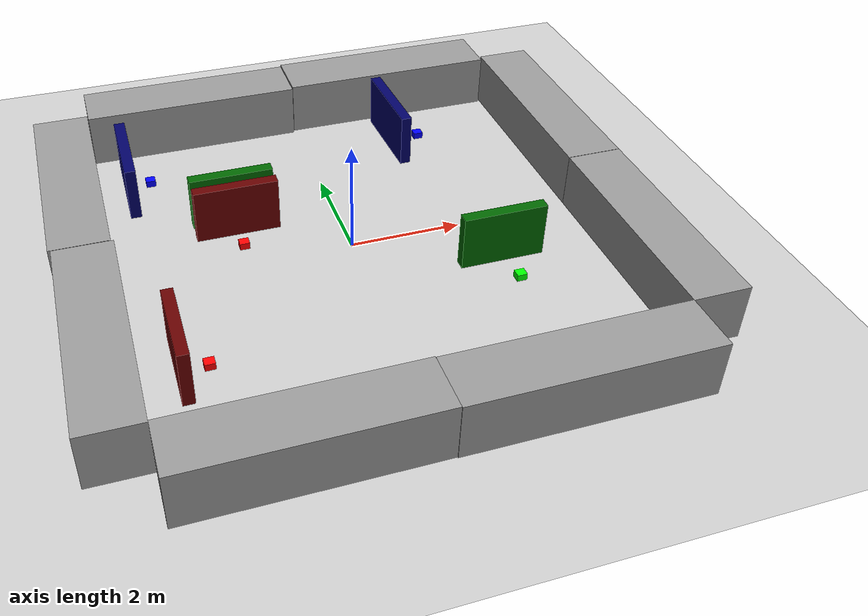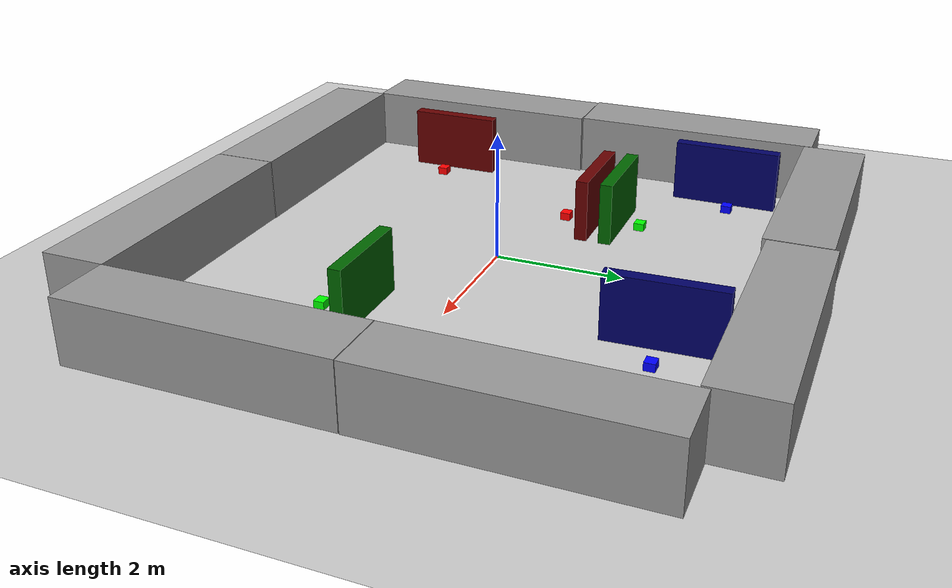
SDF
<sdf version="1.7">
 <world name="default">
  <light name="sun" type="directional">
   <cast_shadows>0</cast_shadows>
   <pose>0 0 10 0 -0 0</pose>
   <diffuse>0.8 0.8 0.8 1</diffuse>
   <specular>0.2 0.2 0.2 1</specular>
   <attenuation>
    <range>1000</range>
    <constant>0.9</constant>
    <linear>0.01</linear>
    <quadratic>0.001</quadratic>
   </attenuation>
   <direction>-0.5 0.1 -0.9</direction>
   <spot><inner_angle>0</inner_angle><outer_angle>0</outer_angle><falloff>0</falloff></spot>
  </light>
  <model name="ground_plane">
   <static>1</static>
   <link name="link">
    <collision name="collision">
     <geometry><plane><normal>0 0 1</normal><size>100 100</size></plane></geometry>
     <surface><friction><ode><mu>100</mu><mu2>50</mu2></ode></friction></surface>
    </collision>
    <visual name="visual">
     <cast_shadows>0</cast_shadows>
     <geometry><plane><normal>0 0 1</normal><size>100 100</size></plane></geometry>
     <material>
      <script><uri>file://media/materials/scripts/gazebo.material</uri><name>Gazebo/Grey</name></script>
     </material>
    </visual>
   </link>
  </model>
  <gravity>0 0 -9.8</gravity>
  <scene><ambient>0.4 0.4 0.4 1</ambient><background>0.7 0.7 0.7 1</background><shadows>1</shadows></scene>
  <magnetic_field>6e-06 2.3e-05 -4.2e-05</magnetic_field>
  <atmosphere type="adiabatic"/>
  <physics type="ode">
   <max_step_size>0.001</max_step_size>
   <real_time_factor>1</real_time_factor>
   <real_time_update_rate>1000</real_time_update_rate>
  </physics>
  <audio><device>default</device></audio>
  <spherical_coordinates>
   <surface_model>EARTH_WGS84</surface_model>
   <latitude_deg>0</latitude_deg>
   <longitude_deg>0</longitude_deg>
   <elevation>0</elevation>
   <heading_deg>0</heading_deg>
  </spherical_coordinates>
  <model name="unit_box_0">
   <pose>2.04077 4.53885 0.499174 0 0.000405 1.9e-05</pose>
   <link name="link">
    <inertial>
     <mass>1</mass>
     <inertia>
      <ixx>0.166667</ixx>
      <ixy>0</ixy>
      <ixz>0</ixz>
      <iyy>0.166667</iyy>
      <iyz>0</iyz>
      <izz>0.166667</izz>
     </inertia>
    </inertial>
    <collision name="collision"><geometry><box><size>4.08527 1 1</size></box></geometry></collision>
    <visual name="visual">
     <geometry><box><size>4.08527 1 1</size></box></geometry>
     <material>
      <script><name>Gazebo/Grey</name><uri>file://media/materials/scripts/gazebo.material</uri></script>
     </material>
    </visual>
   </link>
  </model>
  <model name="unit_box_0_clone">
   <pose>-2.02889 4.47648 0.499239 0 0.000379 0</pose>
   <link name="link">
    <inertial>
     <mass>1</mass>
     <inertia>
      <ixx>0.166667</ixx>
      <ixy>0</ixy>
      <ixz>0</ixz>
      <iyy>0.166667</iyy>
      <iyz>0</iyz>
      <izz>0.166667</izz>
     </inertia>
    </inertial>
    <collision name="collision"><geometry><box><size>4.01582 1 1</size></box></geometry></collision>
    <visual name="visual">
     <geometry><box><size>4.01582 1 1</size></box></geometry>
     <material>
      <script><name>Gazebo/Grey</name><uri>file://media/materials/scripts/gazebo.material</uri></script>
     </material>
    </visual>
   </link>
  </model>
  <model name="unit_box_0_clone_clone">
   <pose>2.05955 -4.50778 0.499133 0 -0.00042 3e-06</pose>
   <link name="link">
    <inertial>
     <mass>1</mass>
     <inertia>
      <ixx>0.166667</ixx>
      <ixy>0</ixy>
      <ixz>0</ixz>
      <iyy>0.166667</iyy>
      <iyz>0</iyz>
      <izz>0.166667</izz>
     </inertia>
    </inertial>
    <collision name="collision"><geometry><box><size>4.12662 1 1</size></box></geometry></collision>
    <visual name="visual">
     <geometry><box><size>4.12662 1 1</size></box></geometry>
     <material>
      <script><name>Gazebo/Grey</name><uri>file://media/materials/scripts/gazebo.material</uri></script>
     </material>
    </visual>
   </link>
  </model>
  <model name="unit_box_clone_0">
   <pose>-4.5144 -1.99618 0.5 -0 -1e-06 -0.00473</pose>
   <link name="link">
    <inertial>
     <mass>1</mass>
     <inertia>
      <ixx>0.166667</ixx>
      <ixy>0</ixy>
      <ixz>0</ixz>
      <iyy>0.166667</iyy>
      <iyz>0</iyz>
      <izz>0.166667</izz>
     </inertia>
    </inertial>
    <collision name="collision"><geometry><box><size>1 4.0622 1</size></box></geometry></collision>
    <visual name="visual">
     <geometry><box><size>1 4.0622 1</size></box></geometry>
     <material>
      <script><name>Gazebo/Grey</name><uri>file://media/materials/scripts/gazebo.material</uri></script>
     </material>
    </visual>
   </link>
  </model>
  <model name="unit_box_clone_1">
   <pose>-4.55273 2.07525 0.499196 -0.000396 -0 -2.2e-05</pose>
   <link name="link">
    <inertial>
     <mass>1</mass>
     <inertia>
      <ixx>0.166667</ixx>
      <ixy>0</ixy>
      <ixz>0</ixz>
      <iyy>0.166667</iyy>
      <iyz>0</iyz>
      <izz>0.166667</izz>
     </inertia>
    </inertial>
    <collision name="collision"><geometry><box><size>1 4.0622 1</size></box></geometry></collision>
    <visual name="visual">
     <geometry><box><size>1 4.0622 1</size></box></geometry>
     <material>
      <script><name>Gazebo/Grey</name><uri>file://media/materials/scripts/gazebo.material</uri></script>
     </material>
    </visual>
   </link>
  </model>
  <model name="unit_box_0_clone_clone_clone">
   <pose>-2.01262 -4.49444 0.499239 0 -0.000379 0.000213</pose>
   <link name="link">
    <inertial>
     <mass>1</mass>
     <inertia>
      <ixx>0.166667</ixx>
      <ixy>0</ixy>
      <ixz>0</ixz>
      <iyy>0.166667</iyy>
      <iyz>0</iyz>
      <izz>0.166667</izz>
     </inertia>
    </inertial>
    <collision name="collision"><geometry><box><size>4.01582 1 1</size></box></geometry></collision>
    <visual name="visual">
     <geometry><box><size>4.01582 1 1</size></box></geometry>
     <material>
      <script><name>Gazebo/Grey</name><uri>file://media/materials/scripts/gazebo.material</uri></script>
     </material>
    </visual>
   </link>
  </model>
  <model name="unit_box_1_clone_1_clone_clone_1">
   <link name="link">
    <inertial>
     <mass>1</mass>
     <inertia>
      <ixx>0.166667</ixx>
      <ixy>0</ixy>
      <ixz>0</ixz>
      <iyy>0.166667</iyy>
      <iyz>0</iyz>
      <izz>0.166667</izz>
     </inertia>
    </inertial>
    <visual name="visual">
     <geometry><box><size>0.177426 0.164052 0.124949</size></box></geometry>
     <material>
      <script><name>Gazebo/Grey</name><uri>file://media/materials/scripts/gazebo.material</uri></script>
      <shader type="pixel"><normal_map>__default__</normal_map></shader>
      <ambient>0 0 1 1</ambient>
      <diffuse>0 0 1 1</diffuse>
      <specular>0 0 1 1</specular>
      <emissive>0 0 1 1</emissive>
      <lighting>1</lighting>
     </material>
    </visual>
    <collision name="collision">
     <geometry><box><size>0.177426 0.164052 0.124949</size></box></geometry>
     <surface>
      <friction>
       <ode><mu>1</mu><mu2>1</mu2><fdir1>0 0 0</fdir1><slip1>0</slip1><slip2>0</slip2></ode>
       <torsional>
        <coefficient>1</coefficient>
        <patch_radius>0</patch_radius>
        <surface_radius>0</surface_radius>
        <use_patch_radius>1</use_patch_radius>
        <ode><slip>0</slip></ode>
       </torsional>
      </friction>
      <bounce><restitution_coefficient>0</restitution_coefficient><threshold>1e+06</threshold></bounce>
      <contact>
       <collide_without_contact>0</collide_without_contact>
       <collide_without_contact_bitmask>1</collide_without_contact_bitmask>
       <collide_bitmask>1</collide_bitmask>
       <ode>
        <soft_cfm>0</soft_cfm>
        <soft_erp>0.2</soft_erp>
        <kp>1e+13</kp>
        <kd>1</kd>
        <max_vel>0.01</max_vel>
        <min_depth>0</min_depth>
       </ode>
       <bullet>
        <split_impulse>1</split_impulse>
        <split_impulse_penetration_threshold>-0.01</split_impulse_penetration_threshold>
        <soft_cfm>0</soft_cfm>
        <soft_erp>0.2</soft_erp>
        <kp>1e+13</kp>
        <kd>1</kd>
       </bullet>
      </contact>
     </surface>
    </collision>
   </link>
   <static>0</static>
   <pose>2.33181 3.06929 0.062474 -4e-06 -1e-06 -4e-06</pose>
  </model>
  <model name="unit_box_1_clone_1_clone">
   <link name="link">
    <inertial>
     <mass>1</mass>
     <inertia>
      <ixx>0.166667</ixx>
      <ixy>0</ixy>
      <ixz>0</ixz>
      <iyy>0.166667</iyy>
      <iyz>0</iyz>
      <izz>0.166667</izz>
     </inertia>
    </inertial>
    <visual name="visual">
     <geometry><box><size>0.177426 0.164052 0.124949</size></box></geometry>
     <material>
      <script><name>Gazebo/Grey</name><uri>file://media/materials/scripts/gazebo.material</uri></script>
      <shader type="pixel"><normal_map>__default__</normal_map></shader>
      <ambient>1 0 0 1</ambient>
      <diffuse>1 0 0 1</diffuse>
      <specular>1 0 0 1</specular>
      <emissive>1 0 0 1</emissive>
      <lighting>1</lighting>
     </material>
    </visual>
    <collision name="collision">
     <geometry><box><size>0.177426 0.164052 0.124949</size></box></geometry>
     <surface>
      <friction>
       <ode><mu>1</mu><mu2>1</mu2><fdir1>0 0 0</fdir1><slip1>0</slip1><slip2>0</slip2></ode>
       <torsional>
        <coefficient>1</coefficient>
        <patch_radius>0</patch_radius>
        <surface_radius>0</surface_radius>
        <use_patch_radius>1</use_patch_radius>
        <ode><slip>0</slip></ode>
       </torsional>
      </friction>
      <bounce><restitution_coefficient>0</restitution_coefficient><threshold>1e+06</threshold></bounce>
      <contact>
       <collide_without_contact>0</collide_without_contact>
       <collide_without_contact_bitmask>1</collide_without_contact_bitmask>
       <collide_bitmask>1</collide_bitmask>
       <ode>
        <soft_cfm>0</soft_cfm>
        <soft_erp>0.2</soft_erp>
        <kp>1e+13</kp>
        <kd>1</kd>
        <max_vel>0.01</max_vel>
        <min_depth>0</min_depth>
       </ode>
       <bullet>
        <split_impulse>1</split_impulse>
        <split_impulse_penetration_threshold>-0.01</split_impulse_penetration_threshold>
        <soft_cfm>0</soft_cfm>
        <soft_erp>0.2</soft_erp>
        <kp>1e+13</kp>
        <kd>1</kd>
       </bullet>
      </contact>
     </surface>
    </collision>
   </link>
   <static>0</static>
   <pose>-2.95207 -2.2407 0.062475 -3e-06 -1e-06 -1.1e-05</pose>
  </model>
  <model name="unit_box_1_clone_1_clone_clone_3">
   <link name="link">
    <inertial>
     <mass>1</mass>
     <inertia>
      <ixx>0.166667</ixx>
      <ixy>0</ixy>
      <ixz>0</ixz>
      <iyy>0.166667</iyy>
      <iyz>0</iyz>
      <izz>0.166667</izz>
     </inertia>
    </inertial>
    <visual name="visual">
     <geometry><box><size>0.177426 0.164052 0.124949</size></box></geometry>
     <material>
      <script><name>Gazebo/Grey</name><uri>file://media/materials/scripts/gazebo.material</uri></script>
      <shader type="pixel"><normal_map>__default__</normal_map></shader>
      <ambient>1 0 0 1</ambient>
      <diffuse>1 0 0 1</diffuse>
      <specular>1 0 0 1</specular>
      <emissive>1 0 0 1</emissive>
      <lighting>1</lighting>
     </material>
    </visual>
    <collision name="collision">
     <geometry><box><size>0.177426 0.164052 0.124949</size></box></geometry>
     <surface>
      <friction>
       <ode><mu>1</mu><mu2>1</mu2><fdir1>0 0 0</fdir1><slip1>0</slip1><slip2>0</slip2></ode>
       <torsional>
        <coefficient>1</coefficient>
        <patch_radius>0</patch_radius>
        <surface_radius>0</surface_radius>
        <use_patch_radius>1</use_patch_radius>
        <ode><slip>0</slip></ode>
       </torsional>
      </friction>
      <bounce><restitution_coefficient>0</restitution_coefficient><threshold>1e+06</threshold></bounce>
      <contact>
       <collide_without_contact>0</collide_without_contact>
       <collide_without_contact_bitmask>1</collide_without_contact_bitmask>
       <collide_bitmask>1</collide_bitmask>
       <ode>
        <soft_cfm>0</soft_cfm>
        <soft_erp>0.2</soft_erp>
        <kp>1e+13</kp>
        <kd>1</kd>
        <max_vel>0.01</max_vel>
        <min_depth>0</min_depth>
       </ode>
       <bullet>
        <split_impulse>1</split_impulse>
        <split_impulse_penetration_threshold>-0.01</split_impulse_penetration_threshold>
        <soft_cfm>0</soft_cfm>
        <soft_erp>0.2</soft_erp>
        <kp>1e+13</kp>
        <kd>1</kd>
       </bullet>
      </contact>
     </surface>
    </collision>
   </link>
   <static>0</static>
   <pose>-1.81636 0.514949 0.062475 -2e-06 2e-06 4e-06</pose>
  </model>
  <model name="unit_box_0_clone_0">
   <pose>4.6221 2.12059 0.499174 0 0.000405 -1.56953</pose>
   <link name="link">
    <inertial>
     <mass>1</mass>
     <inertia>
      <ixx>0.166667</ixx>
      <ixy>0</ixy>
      <ixz>0</ixz>
      <iyy>0.166667</iyy>
      <iyz>0</iyz>
      <izz>0.166667</izz>
     </inertia>
    </inertial>
    <collision name="collision"><geometry><box><size>4.08527 1 1</size></box></geometry></collision>
    <visual name="visual">
     <geometry><box><size>4.08527 1 1</size></box></geometry>
     <material>
      <script><name>Gazebo/Grey</name><uri>file://media/materials/scripts/gazebo.material</uri></script>
     </material>
    </visual>
   </link>
  </model>
  <model name="unit_box_0_clone_0_clone">
   <pose>4.62291 -1.97537 0.499174 0 0.000405 -1.5705</pose>
   <link name="link">
    <inertial>
     <mass>1</mass>
     <inertia>
      <ixx>0.166667</ixx>
      <ixy>0</ixy>
      <ixz>0</ixz>
      <iyy>0.166667</iyy>
      <iyz>0</iyz>
      <izz>0.166667</izz>
     </inertia>
    </inertial>
    <collision name="collision"><geometry><box><size>4.08527 1 1</size></box></geometry></collision>
    <visual name="visual">
     <geometry><box><size>4.08527 1 1</size></box></geometry>
     <material>
      <script><name>Gazebo/Grey</name><uri>file://media/materials/scripts/gazebo.material</uri></script>
     </material>
    </visual>
   </link>
  </model>
  <model name="unit_box_1_clone_1_clone_clone_1_clone">
   <link name="link">
    <inertial>
     <mass>1</mass>
     <inertia>
      <ixx>0.166667</ixx>
      <ixy>0</ixy>
      <ixz>0</ixz>
      <iyy>0.166667</iyy>
      <iyz>0</iyz>
      <izz>0.166667</izz>
     </inertia>
    </inertial>
    <visual name="visual">
     <geometry><box><size>0.177426 0.164052 0.124949</size></box></geometry>
     <material>
      <script><name>Gazebo/Grey</name><uri>file://media/materials/scripts/gazebo.material</uri></script>
      <shader type="pixel"><normal_map>__default__</normal_map></shader>
      <ambient>0 0 1 1</ambient>
      <diffuse>0 0 1 1</diffuse>
      <specular>0 0 1 1</specular>
      <emissive>0 0 1 1</emissive>
      <lighting>1</lighting>
     </material>
    </visual>
    <collision name="collision">
     <geometry><box><size>0.177426 0.164052 0.124949</size></box></geometry>
     <surface>
      <friction>
       <ode><mu>1</mu><mu2>1</mu2><fdir1>0 0 0</fdir1><slip1>0</slip1><slip2>0</slip2></ode>
       <torsional>
        <coefficient>1</coefficient>
        <patch_radius>0</patch_radius>
        <surface_radius>0</surface_radius>
        <use_patch_radius>1</use_patch_radius>
        <ode><slip>0</slip></ode>
       </torsional>
      </friction>
      <bounce><restitution_coefficient>0</restitution_coefficient><threshold>1e+06</threshold></bounce>
      <contact>
       <collide_without_contact>0</collide_without_contact>
       <collide_without_contact_bitmask>1</collide_without_contact_bitmask>
       <collide_bitmask>1</collide_bitmask>
       <ode>
        <soft_cfm>0</soft_cfm>
        <soft_erp>0.2</soft_erp>
        <kp>1e+13</kp>
        <kd>1</kd>
        <max_vel>0.01</max_vel>
        <min_depth>0</min_depth>
       </ode>
       <bullet>
        <split_impulse>1</split_impulse>
        <split_impulse_penetration_threshold>-0.01</split_impulse_penetration_threshold>
        <soft_cfm>0</soft_cfm>
        <soft_erp>0.2</soft_erp>
        <kp>1e+13</kp>
        <kd>1</kd>
       </bullet>
      </contact>
     </surface>
    </collision>
   </link>
   <static>0</static>
   <pose>-3.10843 2.92629 0.062474 3e-06 -2e-06 -5e-06</pose>
  </model>
  <model name="GreenBox">
   <link name="link">
    <inertial>
     <mass>1</mass>
     <inertia>
      <ixx>0.166667</ixx>
      <ixy>0</ixy>
      <ixz>0</ixz>
      <iyy>0.166667</iyy>
      <iyz>0</iyz>
      <izz>0.166667</izz>
     </inertia>
    </inertial>
    <visual name="visual">
     <geometry><box><size>0.177426 0.164052 0.124949</size></box></geometry>
     <material>
      <script><name>Gazebo/Grey</name><uri>file://media/materials/scripts/gazebo.material</uri></script>
      <shader type="pixel"><normal_map>__default__</normal_map></shader>
      <ambient>0 1 0 0</ambient>
      <diffuse>0 1 0 0</diffuse>
      <specular>0 1 0 0</specular>
      <emissive>0 1 0 0</emissive>
      <lighting>1</lighting>
     </material>
    </visual>
    <collision name="collision">
     <geometry><box><size>0.177426 0.164052 0.124949</size></box></geometry>
     <surface>
      <friction>
       <ode><mu>1</mu><mu2>1</mu2><fdir1>0 0 0</fdir1><slip1>0</slip1><slip2>0</slip2></ode>
       <torsional>
        <coefficient>1</coefficient>
        <patch_radius>0</patch_radius>
        <surface_radius>0</surface_radius>
        <use_patch_radius>1</use_patch_radius>
        <ode><slip>0</slip></ode>
       </torsional>
      </friction>
      <bounce><restitution_coefficient>0</restitution_coefficient><threshold>1e+06</threshold></bounce>
      <contact>
       <collide_without_contact>0</collide_without_contact>
       <collide_without_contact_bitmask>1</collide_without_contact_bitmask>
       <collide_bitmask>1</collide_bitmask>
       <ode>
        <soft_cfm>0</soft_cfm>
        <soft_erp>0.2</soft_erp>
        <kp>1e+13</kp>
        <kd>1</kd>
        <max_vel>0.01</max_vel>
        <min_depth>0</min_depth>
       </ode>
       <bullet>
        <split_impulse>1</split_impulse>
        <split_impulse_penetration_threshold>-0.01</split_impulse_penetration_threshold>
        <soft_cfm>0</soft_cfm>
        <soft_erp>0.2</soft_erp>
        <kp>1e+13</kp>
        <kd>1</kd>
       </bullet>
      </contact>
     </surface>
    </collision>
   </link>
   <static>0</static>
   <pose>2.45278 -1.69289 0.062474 2e-06 -4e-06 -1.2e-05</pose>
  </model>
  <model name="GreenBox_clone">
   <link name="link">
    <inertial>
     <mass>1</mass>
     <inertia>
      <ixx>0.166667</ixx>
      <ixy>0</ixy>
      <ixz>0</ixz>
      <iyy>0.166667</iyy>
      <iyz>0</iyz>
      <izz>0.166667</izz>
     </inertia>
    </inertial>
    <visual name="visual">
     <geometry><box><size>0.177426 0.164052 0.124949</size></box></geometry>
     <material>
      <script><name>Gazebo/Grey</name><uri>file://media/materials/scripts/gazebo.material</uri></script>
      <shader type="pixel"><normal_map>__default__</normal_map></shader>
      <ambient>0 1 0 0</ambient>
      <diffuse>0 1 0 0</diffuse>
      <specular>0 1 0 0</specular>
      <emissive>0 1 0 0</emissive>
      <lighting>1</lighting>
     </material>
    </visual>
    <collision name="collision">
     <geometry><box><size>0.177426 0.164052 0.124949</size></box></geometry>
     <surface>
      <friction>
       <ode><mu>1</mu><mu2>1</mu2><fdir1>0 0 0</fdir1><slip1>0</slip1><slip2>0</slip2></ode>
       <torsional>
        <coefficient>1</coefficient>
        <patch_radius>0</patch_radius>
        <surface_radius>0</surface_radius>
        <use_patch_radius>1</use_patch_radius>
        <ode><slip>0</slip></ode>
       </torsional>
      </friction>
      <bounce><restitution_coefficient>0</restitution_coefficient><threshold>1e+06</threshold></bounce>
      <contact>
       <collide_without_contact>0</collide_without_contact>
       <collide_without_contact_bitmask>1</collide_without_contact_bitmask>
       <collide_bitmask>1</collide_bitmask>
       <ode>
        <soft_cfm>0</soft_cfm>
        <soft_erp>0.2</soft_erp>
        <kp>1e+13</kp>
        <kd>1</kd>
        <max_vel>0.01</max_vel>
        <min_depth>0</min_depth>
       </ode>
       <bullet>
        <split_impulse>1</split_impulse>
        <split_impulse_penetration_threshold>-0.01</split_impulse_penetration_threshold>
        <soft_cfm>0</soft_cfm>
        <soft_erp>0.2</soft_erp>
        <kp>1e+13</kp>
        <kd>1</kd>
       </bullet>
      </contact>
     </surface>
    </collision>
   </link>
   <static>0</static>
   <pose>-1.85824 1.76204 0.062474 -4e-06 -2e-06 -1e-05</pose>
  </model>
  <model name="GreenWall">
   <link name="link">
    <inertial>
     <mass>1</mass>
     <inertia>
      <ixx>0.166667</ixx>
      <ixy>0</ixy>
      <ixz>0</ixz>
      <iyy>0.166667</iyy>
      <iyz>0</iyz>
      <izz>0.166667</izz>
     </inertia>
    </inertial>
    <visual name="visual">
     <geometry><box><size>1.50144 0.197957 1</size></box></geometry>
     <material>
      <script><name>Gazebo/Grey</name><uri>file://media/materials/scripts/gazebo.material</uri></script>
      <shader type="pixel"><normal_map>__default__</normal_map></shader>
      <ambient>0 0.4 0 0</ambient>
      <diffuse>0.7 0.7 0.7 1</diffuse>
      <specular>0.01 0.01 0.01 1</specular>
      <emissive>0 0 0 1</emissive>
     </material>
    </visual>
    <collision name="collision">
     <geometry><box><size>1.50144 0.197957 1</size></box></geometry>
     <surface>
      <friction>
       <ode><mu>1</mu><mu2>1</mu2><fdir1>0 0 0</fdir1><slip1>0</slip1><slip2>0</slip2></ode>
       <torsional>
        <coefficient>1</coefficient>
        <patch_radius>0</patch_radius>
        <surface_radius>0</surface_radius>
        <use_patch_radius>1</use_patch_radius>
        <ode><slip>0</slip></ode>
       </torsional>
      </friction>
      <bounce><restitution_coefficient>0</restitution_coefficient><threshold>1e+06</threshold></bounce>
      <contact>
       <collide_without_contact>0</collide_without_contact>
       <collide_without_contact_bitmask>1</collide_without_contact_bitmask>
       <collide_bitmask>1</collide_bitmask>
       <ode>
        <soft_cfm>0</soft_cfm>
        <soft_erp>0.2</soft_erp>
        <kp>1e+13</kp>
        <kd>1</kd>
        <max_vel>0.01</max_vel>
        <min_depth>0</min_depth>
       </ode>
       <bullet>
        <split_impulse>1</split_impulse>
        <split_impulse_penetration_threshold>-0.01</split_impulse_penetration_threshold>
        <soft_cfm>0</soft_cfm>
        <soft_erp>0.2</soft_erp>
        <kp>1e+13</kp>
        <kd>1</kd>
       </bullet>
      </contact>
     </surface>
    </collision>
   </link>
   <static>0</static>
   <pose>2.35401 -1.07099 0.5 1e-06 -0 0</pose>
  </model>
  <model name="GreenWall2">
   <link name="link">
    <inertial>
     <mass>1</mass>
     <inertia>
      <ixx>0.166667</ixx>
      <ixy>0</ixy>
      <ixz>0</ixz>
      <iyy>0.166667</iyy>
      <iyz>0</iyz>
      <izz>0.166667</izz>
     </inertia>
    </inertial>
    <visual name="visual">
     <geometry><box><size>1.50144 0.197957 1</size></box></geometry>
     <material>
      <script><name>Gazebo/Grey</name><uri>file://media/materials/scripts/gazebo.material</uri></script>
      <shader type="pixel"><normal_map>__default__</normal_map></shader>
      <ambient>0 0.4 0 0</ambient>
      <diffuse>0.7 0.7 0.7 1</diffuse>
      <specular>0.01 0.01 0.01 1</specular>
      <emissive>0 0 0 1</emissive>
     </material>
    </visual>
    <collision name="collision">
     <geometry><box><size>1.50144 0.197957 1</size></box></geometry>
     <surface>
      <friction>
       <ode><mu>1</mu><mu2>1</mu2><fdir1>0 0 0</fdir1><slip1>0</slip1><slip2>0</slip2></ode>
       <torsional>
        <coefficient>1</coefficient>
        <patch_radius>0</patch_radius>
        <surface_radius>0</surface_radius>
        <use_patch_radius>1</use_patch_radius>
        <ode><slip>0</slip></ode>
       </torsional>
      </friction>
      <bounce><restitution_coefficient>0</restitution_coefficient><threshold>1e+06</threshold></bounce>
      <contact>
       <collide_without_contact>0</collide_without_contact>
       <collide_without_contact_bitmask>1</collide_without_contact_bitmask>
       <collide_bitmask>1</collide_bitmask>
       <ode>
        <soft_cfm>0</soft_cfm>
        <soft_erp>0.2</soft_erp>
        <kp>1e+13</kp>
        <kd>1</kd>
        <max_vel>0.01</max_vel>
        <min_depth>0</min_depth>
       </ode>
       <bullet>
        <split_impulse>1</split_impulse>
        <split_impulse_penetration_threshold>-0.01</split_impulse_penetration_threshold>
        <soft_cfm>0</soft_cfm>
        <soft_erp>0.2</soft_erp>
        <kp>1e+13</kp>
        <kd>1</kd>
       </bullet>
      </contact>
     </surface>
    </collision>
   </link>
   <static>0</static>
   <pose>-1.82248 1.3914 0.5 0 0 -1e-06</pose>
  </model>
  <model name="unit_box_1_clone_clone">
   <link name="link">
    <inertial>
     <mass>1</mass>
     <inertia>
      <ixx>0.166667</ixx>
      <ixy>0</ixy>
      <ixz>0</ixz>
      <iyy>0.166667</iyy>
      <iyz>0</iyz>
      <izz>0.166667</izz>
     </inertia>
    </inertial>
    <visual name="visual">
     <geometry><box><size>1.72369 0.197957 1</size></box></geometry>
     <material>
      <script><name>Gazebo/Grey</name><uri>file://media/materials/scripts/gazebo.material</uri></script>
      <shader type="pixel"><normal_map>__default__</normal_map></shader>
      <ambient>0 0 0.4 0</ambient>
      <diffuse>0.7 0.7 0.7 1</diffuse>
      <specular>0.01 0.01 0.01 1</specular>
      <emissive>0 0 0 1</emissive>
     </material>
    </visual>
    <collision name="collision">
     <geometry><box><size>1.72369 0.197957 1</size></box></geometry>
     <surface>
      <friction>
       <ode><mu>1</mu><mu2>1</mu2><fdir1>0 0 0</fdir1><slip1>0</slip1><slip2>0</slip2></ode>
       <torsional>
        <coefficient>1</coefficient>
        <patch_radius>0</patch_radius>
        <surface_radius>0</surface_radius>
        <use_patch_radius>1</use_patch_radius>
        <ode><slip>0</slip></ode>
       </torsional>
      </friction>
      <bounce><restitution_coefficient>0</restitution_coefficient><threshold>1e+06</threshold></bounce>
      <contact>
       <collide_without_contact>0</collide_without_contact>
       <collide_without_contact_bitmask>1</collide_without_contact_bitmask>
       <collide_bitmask>1</collide_bitmask>
       <ode>
        <soft_cfm>0</soft_cfm>
        <soft_erp>0.2</soft_erp>
        <kp>1e+13</kp>
        <kd>1</kd>
        <max_vel>0.01</max_vel>
        <min_depth>0</min_depth>
       </ode>
       <bullet>
        <split_impulse>1</split_impulse>
        <split_impulse_penetration_threshold>-0.01</split_impulse_penetration_threshold>
        <soft_cfm>0</soft_cfm>
        <soft_erp>0.2</soft_erp>
        <kp>1e+13</kp>
        <kd>1</kd>
       </bullet>
      </contact>
     </surface>
    </collision>
   </link>
   <static>0</static>
   <pose>-3.50394 2.79977 0.499996 0 -5e-06 -1.57807</pose>
  </model>
  <model name="unit_box_1_clone">
   <link name="link">
    <inertial>
     <mass>1</mass>
     <inertia>
      <ixx>0.166667</ixx>
      <ixy>0</ixy>
      <ixz>0</ixz>
      <iyy>0.166667</iyy>
      <iyz>0</iyz>
      <izz>0.166667</izz>
     </inertia>
    </inertial>
    <visual name="visual">
     <geometry><box><size>1.72369 0.197957 1</size></box></geometry>
     <material>
      <script><name>Gazebo/Grey</name><uri>file://media/materials/scripts/gazebo.material</uri></script>
      <shader type="pixel"><normal_map>__default__</normal_map></shader>
      <ambient>0 0 0.4 0</ambient>
      <diffuse>0.7 0.7 0.7 1</diffuse>
      <specular>0.01 0.01 0.01 1</specular>
      <emissive>0 0 0 1</emissive>
     </material>
    </visual>
    <collision name="collision">
     <geometry><box><size>1.72369 0.197957 1</size></box></geometry>
     <surface>
      <friction>
       <ode><mu>1</mu><mu2>1</mu2><fdir1>0 0 0</fdir1><slip1>0</slip1><slip2>0</slip2></ode>
       <torsional>
        <coefficient>1</coefficient>
        <patch_radius>0</patch_radius>
        <surface_radius>0</surface_radius>
        <use_patch_radius>1</use_patch_radius>
        <ode><slip>0</slip></ode>
       </torsional>
      </friction>
      <bounce><restitution_coefficient>0</restitution_coefficient><threshold>1e+06</threshold></bounce>
      <contact>
       <collide_without_contact>0</collide_without_contact>
       <collide_without_contact_bitmask>1</collide_without_contact_bitmask>
       <collide_bitmask>1</collide_bitmask>
       <ode>
        <soft_cfm>0</soft_cfm>
        <soft_erp>0.2</soft_erp>
        <kp>1e+13</kp>
        <kd>1</kd>
        <max_vel>0.01</max_vel>
        <min_depth>0</min_depth>
       </ode>
       <bullet>
        <split_impulse>1</split_impulse>
        <split_impulse_penetration_threshold>-0.01</split_impulse_penetration_threshold>
        <soft_cfm>0</soft_cfm>
        <soft_erp>0.2</soft_erp>
        <kp>1e+13</kp>
        <kd>1</kd>
       </bullet>
      </contact>
     </surface>
    </collision>
   </link>
   <static>0</static>
   <pose>1.74768 3.07725 0.499956 -1e-06 -2.1e-05 -1.53428</pose>
  </model>
  <model name="unit_box_1_clone_0_clone">
   <link name="link">
    <inertial>
     <mass>1</mass>
     <inertia>
      <ixx>0.166667</ixx>
      <ixy>0</ixy>
      <ixz>0</ixz>
      <iyy>0.166667</iyy>
      <iyz>0</iyz>
      <izz>0.166667</izz>
     </inertia>
    </inertial>
    <visual name="visual">
     <geometry><box><size>1.50144 0.197957 1</size></box></geometry>
     <material>
      <script><name>Gazebo/Grey</name><uri>file://media/materials/scripts/gazebo.material</uri></script>
      <shader type="pixel"><normal_map>__default__</normal_map></shader>
      <ambient>0.4 0 0 0</ambient>
      <diffuse>0.7 0.7 0.7 1</diffuse>
      <specular>0.01 0.01 0.01 1</specular>
      <emissive>0 0 0 1</emissive>
     </material>
    </visual>
    <collision name="collision">
     <geometry><box><size>1.50144 0.197957 1</size></box></geometry>
     <surface>
      <friction>
       <ode><mu>1</mu><mu2>1</mu2><fdir1>0 0 0</fdir1><slip1>0</slip1><slip2>0</slip2></ode>
       <torsional>
        <coefficient>1</coefficient>
        <patch_radius>0</patch_radius>
        <surface_radius>0</surface_radius>
        <use_patch_radius>1</use_patch_radius>
        <ode><slip>0</slip></ode>
       </torsional>
      </friction>
      <bounce><restitution_coefficient>0</restitution_coefficient><threshold>1e+06</threshold></bounce>
      <contact>
       <collide_without_contact>0</collide_without_contact>
       <collide_without_contact_bitmask>1</collide_without_contact_bitmask>
       <collide_bitmask>1</collide_bitmask>
       <ode>
        <soft_cfm>0</soft_cfm>
        <soft_erp>0.2</soft_erp>
        <kp>1e+13</kp>
        <kd>1</kd>
        <max_vel>0.01</max_vel>
        <min_depth>0</min_depth>
       </ode>
       <bullet>
        <split_impulse>1</split_impulse>
        <split_impulse_penetration_threshold>-0.01</split_impulse_penetration_threshold>
        <soft_cfm>0</soft_cfm>
        <soft_erp>0.2</soft_erp>
        <kp>1e+13</kp>
        <kd>1</kd>
       </bullet>
      </contact>
     </surface>
    </collision>
   </link>
   <static>0</static>
   <pose>-1.82173 0.994708 0.5 -1e-06 1e-06 0</pose>
  </model>
  <model name="unit_box_1_clone_1">
   <link name="link">
    <inertial>
     <mass>1</mass>
     <inertia>
      <ixx>0.166667</ixx>
      <ixy>0</ixy>
      <ixz>0</ixz>
      <iyy>0.166667</iyy>
      <iyz>0</iyz>
      <izz>0.166667</izz>
     </inertia>
    </inertial>
    <visual name="visual">
     <geometry><box><size>1.50144 0.197957 1</size></box></geometry>
     <material>
      <script><name>Gazebo/Grey</name><uri>file://media/materials/scripts/gazebo.material</uri></script>
      <shader type="pixel"><normal_map>__default__</normal_map></shader>
      <ambient>0.4 0 0 0</ambient>
      <diffuse>0.7 0.7 0.7 1</diffuse>
      <specular>0.01 0.01 0.01 1</specular>
      <emissive>0 0 0 1</emissive>
     </material>
    </visual>
    <collision name="collision">
     <geometry><box><size>1.50144 0.197957 1</size></box></geometry>
     <surface>
      <friction>
       <ode><mu>1</mu><mu2>1</mu2><fdir1>0 0 0</fdir1><slip1>0</slip1><slip2>0</slip2></ode>
       <torsional>
        <coefficient>1</coefficient>
        <patch_radius>0</patch_radius>
        <surface_radius>0</surface_radius>
        <use_patch_radius>1</use_patch_radius>
        <ode><slip>0</slip></ode>
       </torsional>
      </friction>
      <bounce><restitution_coefficient>0</restitution_coefficient><threshold>1e+06</threshold></bounce>
      <contact>
       <collide_without_contact>0</collide_without_contact>
       <collide_without_contact_bitmask>1</collide_without_contact_bitmask>
       <collide_bitmask>1</collide_bitmask>
       <ode>
        <soft_cfm>0</soft_cfm>
        <soft_erp>0.2</soft_erp>
        <kp>1e+13</kp>
        <kd>1</kd>
        <max_vel>0.01</max_vel>
        <min_depth>0</min_depth>
       </ode>
       <bullet>
        <split_impulse>1</split_impulse>
        <split_impulse_penetration_threshold>-0.01</split_impulse_penetration_threshold>
        <soft_cfm>0</soft_cfm>
        <soft_erp>0.2</soft_erp>
        <kp>1e+13</kp>
        <kd>1</kd>
       </bullet>
      </contact>
     </surface>
    </collision>
   </link>
   <static>0</static>
   <pose>-3.38179 -2.17828 0.5 -1e-06 1e-06 -1.57323</pose>
  </model>
 </world>
</sdf>
